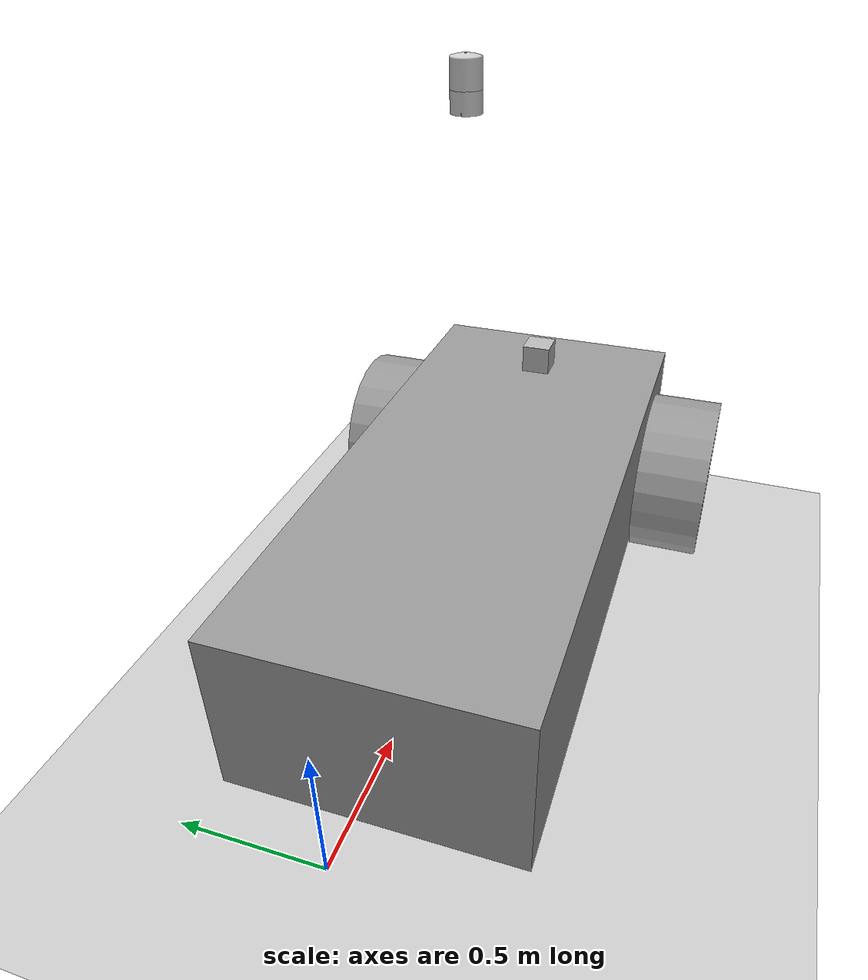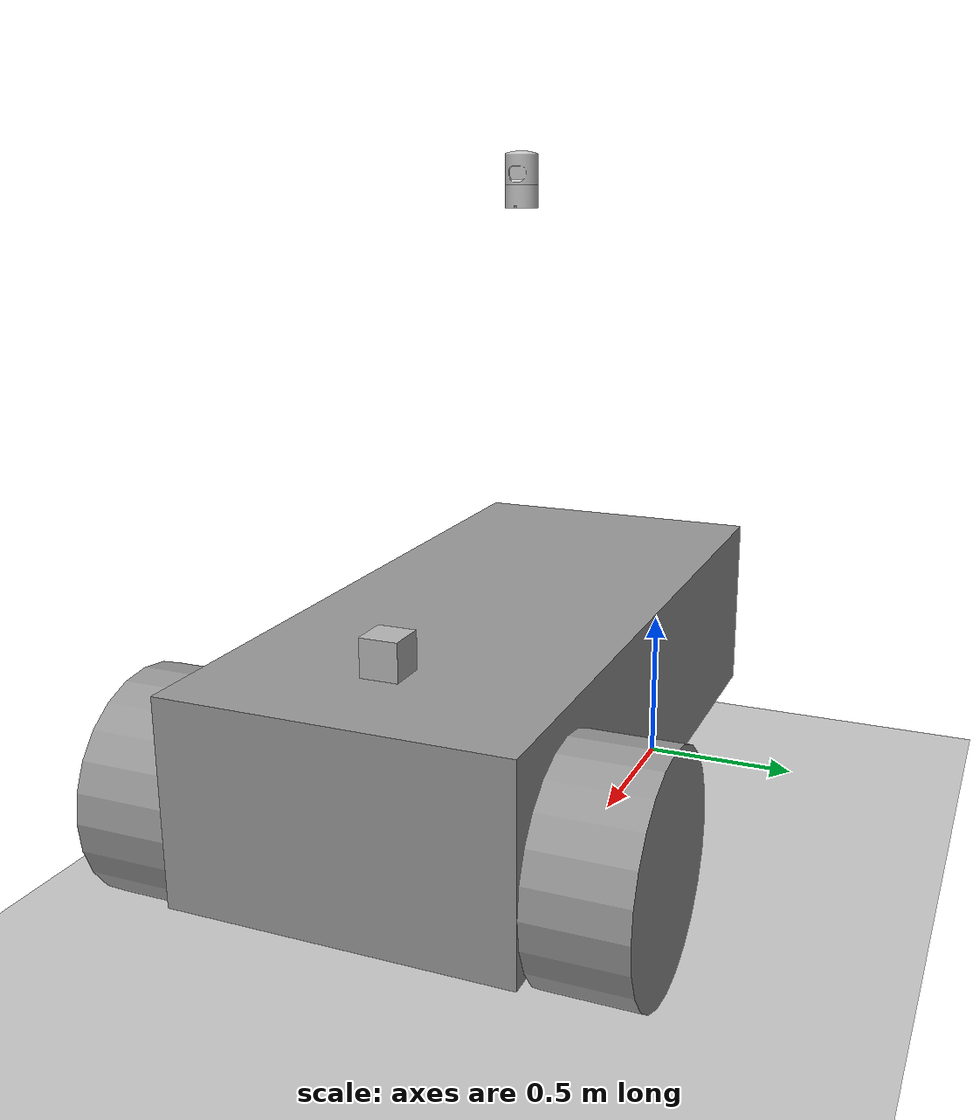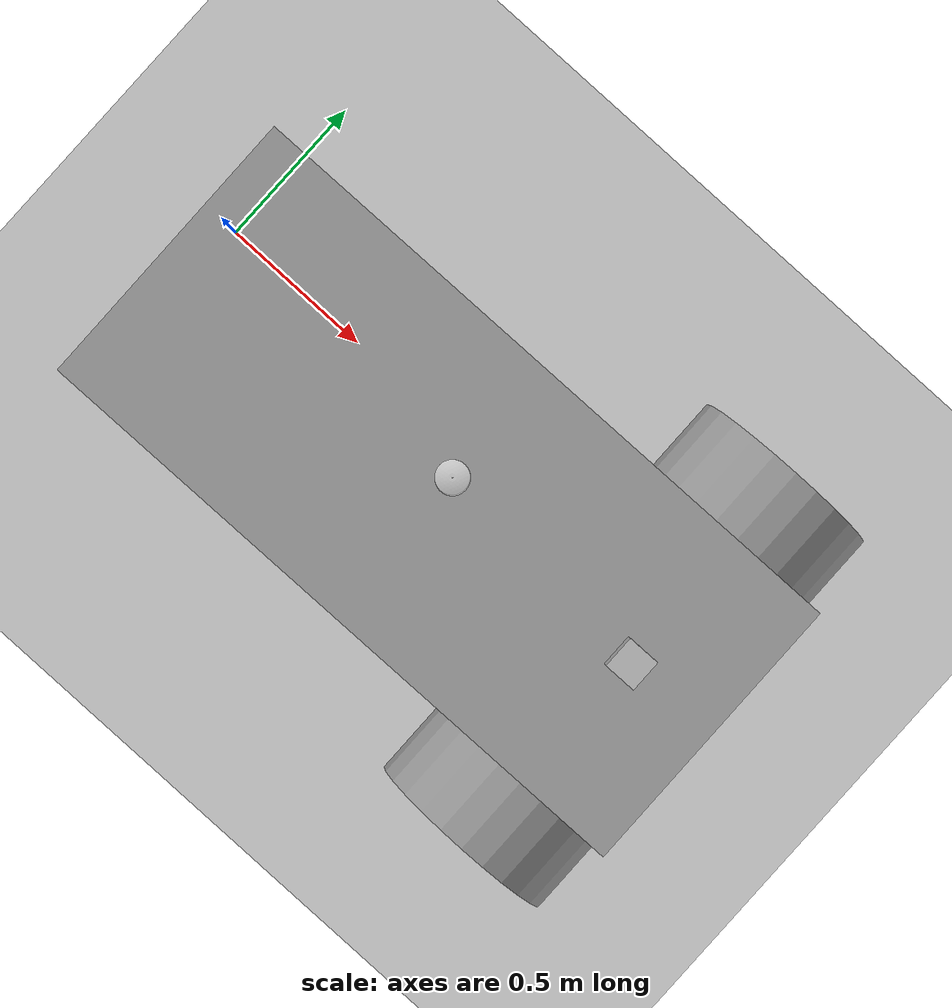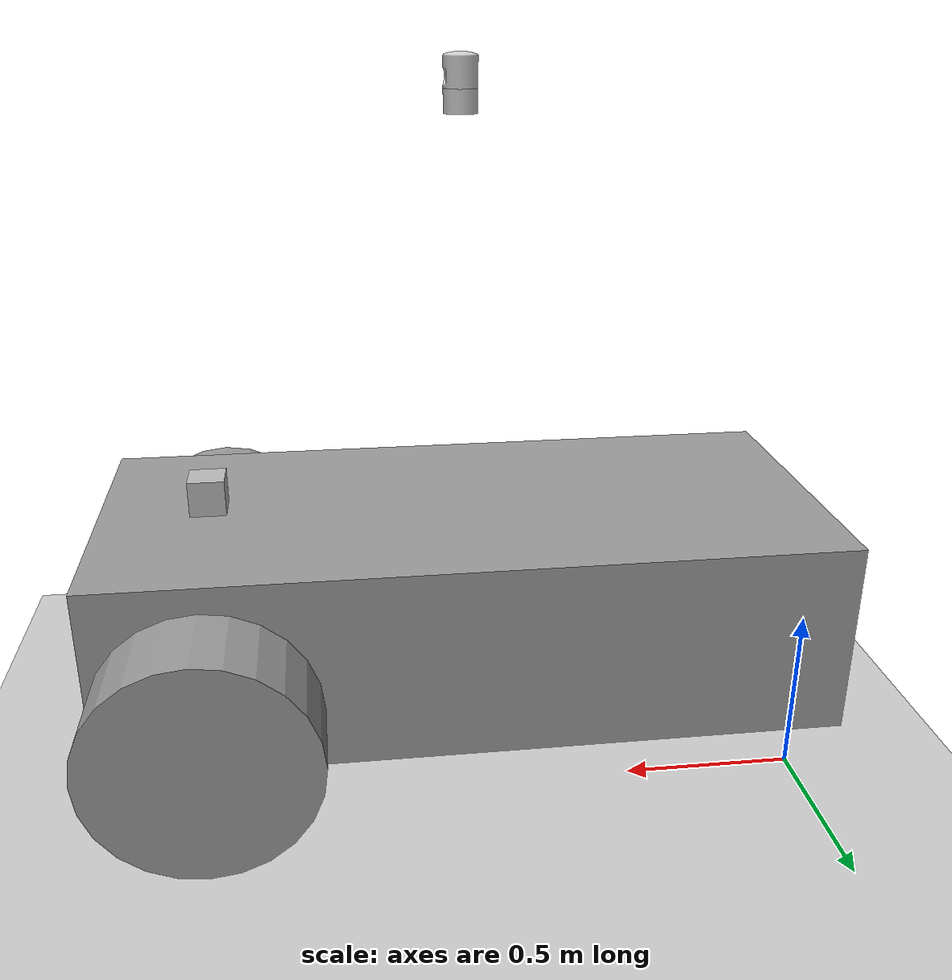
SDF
<sdf version="1.7">
 <world name="default">
  <light name="sun" type="directional">
   <pose>0 0 10 0 -0 0</pose>
   <diffuse>0.8 0.8 0.8 1</diffuse>
   <specular>0.2 0.2 0.2 1</specular>
   <attenuation>
    <range>1000</range>
    <constant>0.9</constant>
    <linear>0.01</linear>
    <quadratic>0.001</quadratic>
   </attenuation>
   <direction>-0.5 0.1 -0.9</direction>
   <spot><inner_angle>0</inner_angle><outer_angle>0</outer_angle><falloff>0</falloff></spot>
  </light>
  <model name="ground_plane">
   <static>1</static>
   <link name="link">
    <collision name="collision">
     <geometry><plane><normal>0 0 1</normal><size>100 100</size></plane></geometry>
     <surface><friction><ode><mu>100</mu><mu2>50</mu2></ode></friction></surface>
    </collision>
    <visual name="visual">
     <cast_shadows>0</cast_shadows>
     <geometry><plane><normal>0 0 1</normal><size>100 100</size></plane></geometry>
     <material>
      <script><uri>file://media/materials/scripts/gazebo.material</uri><name>Gazebo/Grey</name></script>
     </material>
    </visual>
   </link>
  </model>
  <gravity>0 0 -9.8</gravity>
  <magnetic_field>6e-06 2.3e-05 -4.2e-05</magnetic_field>
  <atmosphere type="adiabatic"/>
  <physics type="ode">
   <max_step_size>0.001</max_step_size>
   <real_time_factor>1</real_time_factor>
   <real_time_update_rate>1000</real_time_update_rate>
  </physics>
  <scene><ambient>0.4 0.4 0.4 1</ambient><background>0.7 0.7 0.7 1</background><shadows>1</shadows></scene>
  <spherical_coordinates>
   <surface_model>EARTH_WGS84</surface_model>
   <latitude_deg>0</latitude_deg>
   <longitude_deg>0</longitude_deg>
   <elevation>0</elevation>
   <heading_deg>0</heading_deg>
  </spherical_coordinates>
  <audio><device>default</device></audio>
  <model name="vehicle">
   <model name="my_vehicle">
    <link name="link_0">
     <inertial>
      <mass>0.978008</mass>
      <inertia>
       <ixx>0.122564</ixx>
       <ixy>0</ixy>
       <ixz>0</ixz>
       <iyy>0.407773</iyy>
       <iyz>0</iyz>
       <izz>0.472213</izz>
      </inertia>
     </inertial>
     <pose>0 0 0.4 0 -0 0</pose>
     <visual name="visual">
      <geometry><box><size>2.01366 0.897702 0.541504</size></box></geometry>
      <material>
       <lighting>1</lighting>
       <script><uri>file://media/materials/scripts/gazebo.material</uri><name>Gazebo/Grey</name></script>
       <shader type="pixel"><normal_map>__default__</normal_map></shader>
       <ambient>0.3 0.3 0.3 1</ambient>
       <diffuse>0.7 0.7 0.7 1</diffuse>
       <specular>0.01 0.01 0.01 1</specular>
       <emissive>0 0 0 1</emissive>
      </material>
     </visual>
     <collision name="collision">
      <geometry><box><size>2.01366 0.897702 0.541504</size></box></geometry>
      <surface>
       <friction>
        <ode><mu>1</mu><mu2>1</mu2><fdir1>0 0 0</fdir1><slip1>0</slip1><slip2>0</slip2></ode>
        <torsional>
         <coefficient>1</coefficient>
         <patch_radius>0</patch_radius>
         <surface_radius>0</surface_radius>
         <use_patch_radius>1</use_patch_radius>
         <ode><slip>0</slip></ode>
        </torsional>
       </friction>
       <bounce><restitution_coefficient>0</restitution_coefficient><threshold>1e+06</threshold></bounce>
       <contact>
        <collide_without_contact>0</collide_without_contact>
        <collide_without_contact_bitmask>1</collide_without_contact_bitmask>
        <collide_bitmask>1</collide_bitmask>
        <ode>
         <soft_cfm>0</soft_cfm>
         <soft_erp>0.2</soft_erp>
         <kp>1e+13</kp>
         <kd>1</kd>
         <max_vel>0.01</max_vel>
         <min_depth>0</min_depth>
        </ode>
        <bullet>
         <split_impulse>1</split_impulse>
         <split_impulse_penetration_threshold>-0.01</split_impulse_penetration_threshold>
         <soft_cfm>0</soft_cfm>
         <soft_erp>0.2</soft_erp>
         <kp>1e+13</kp>
         <kd>1</kd>
        </bullet>
       </contact>
      </surface>
     </collision>
    </link>
    <link name="link_1">
     <inertial>
      <mass>1</mass>
      <inertia><ixx>0.145833</ixx><ixy>0</ixy><ixz>0</ixz><iyy>0.145833</iyy><iyz>0</iyz><izz>0.125</izz></inertia>
     </inertial>
     <pose>0.70683 -0.573879 0.3 1.5707 -0 0</pose>
     <visual name="visual">
      <geometry><cylinder><radius>0.3</radius><length>0.25</length></cylinder></geometry>
      <material>
       <lighting>1</lighting>
       <script><uri>file://media/materials/scripts/gazebo.material</uri><name>Gazebo/Grey</name></script>
       <shader type="pixel"><normal_map>__default__</normal_map></shader>
       <ambient>0.3 0.3 0.3 1</ambient>
       <diffuse>0.7 0.7 0.7 1</diffuse>
       <specular>0.01 0.01 0.01 1</specular>
       <emissive>0 0 0 1</emissive>
      </material>
     </visual>
     <collision name="collision">
      <geometry><cylinder><radius>0.3</radius><length>0.25</length></cylinder></geometry>
      <surface>
       <friction>
        <ode><mu>1</mu><mu2>1</mu2><fdir1>0 0 0</fdir1><slip1>0</slip1><slip2>0</slip2></ode>
        <torsional>
         <coefficient>1</coefficient>
         <patch_radius>0</patch_radius>
         <surface_radius>0</surface_radius>
         <use_patch_radius>1</use_patch_radius>
         <ode><slip>0</slip></ode>
        </torsional>
       </friction>
       <bounce><restitution_coefficient>0</restitution_coefficient><threshold>1e+06</threshold></bounce>
       <contact>
        <collide_without_contact>0</collide_without_contact>
        <collide_without_contact_bitmask>1</collide_without_contact_bitmask>
        <collide_bitmask>1</collide_bitmask>
        <ode>
         <soft_cfm>0</soft_cfm>
         <soft_erp>0.2</soft_erp>
         <kp>1e+13</kp>
         <kd>1</kd>
         <max_vel>0.01</max_vel>
         <min_depth>0</min_depth>
        </ode>
        <bullet>
         <split_impulse>1</split_impulse>
         <split_impulse_penetration_threshold>-0.01</split_impulse_penetration_threshold>
         <soft_cfm>0</soft_cfm>
         <soft_erp>0.2</soft_erp>
         <kp>1e+13</kp>
         <kd>1</kd>
        </bullet>
       </contact>
      </surface>
     </collision>
    </link>
    <link name="link_1_clone">
     <inertial>
      <mass>1</mass>
      <inertia><ixx>0.145833</ixx><ixy>0</ixy><ixz>0</ixz><iyy>0.145833</iyy><iyz>0</iyz><izz>0.125</izz></inertia>
     </inertial>
     <pose>0.70683 0.573879 0.3 1.5707 -0 0</pose>
     <visual name="visual">
      <geometry><cylinder><radius>0.3</radius><length>0.25</length></cylinder></geometry>
      <material>
       <lighting>1</lighting>
       <script><uri>file://media/materials/scripts/gazebo.material</uri><name>Gazebo/Grey</name></script>
       <shader type="pixel"><normal_map>__default__</normal_map></shader>
       <ambient>0.3 0.3 0.3 1</ambient>
       <diffuse>0.7 0.7 0.7 1</diffuse>
       <specular>0.01 0.01 0.01 1</specular>
       <emissive>0 0 0 1</emissive>
      </material>
     </visual>
     <collision name="collision">
      <geometry><cylinder><radius>0.3</radius><length>0.25</length></cylinder></geometry>
      <surface>
       <friction>
        <ode><mu>1</mu><mu2>1</mu2><fdir1>0 0 0</fdir1><slip1>0</slip1><slip2>0</slip2></ode>
        <torsional>
         <coefficient>1</coefficient>
         <patch_radius>0</patch_radius>
         <surface_radius>0</surface_radius>
         <use_patch_radius>1</use_patch_radius>
         <ode><slip>0</slip></ode>
        </torsional>
       </friction>
       <bounce><restitution_coefficient>0</restitution_coefficient><threshold>1e+06</threshold></bounce>
       <contact>
        <collide_without_contact>0</collide_without_contact>
        <collide_without_contact_bitmask>1</collide_without_contact_bitmask>
        <collide_bitmask>1</collide_bitmask>
        <ode>
         <soft_cfm>0</soft_cfm>
         <soft_erp>0.2</soft_erp>
         <kp>1e+13</kp>
         <kd>1</kd>
         <max_vel>0.01</max_vel>
         <min_depth>0</min_depth>
        </ode>
        <bullet>
         <split_impulse>1</split_impulse>
         <split_impulse_penetration_threshold>-0.01</split_impulse_penetration_threshold>
         <soft_cfm>0</soft_cfm>
         <soft_erp>0.2</soft_erp>
         <kp>1e+13</kp>
         <kd>1</kd>
        </bullet>
       </contact>
      </surface>
     </collision>
    </link>
    <link name="link_2">
     <inertial>
      <mass>1</mass>
      <inertia><ixx>0.1</ixx><ixy>0</ixy><ixz>0</ixz><iyy>0.1</iyy><iyz>0</iyz><izz>0.1</izz></inertia>
     </inertial>
     <pose>-0.80683 -0 0.2 0 -0 0</pose>
     <visual name="visual">
      <geometry><sphere><radius>0.2</radius></sphere></geometry>
      <material>
       <lighting>1</lighting>
       <script><uri>file://media/materials/scripts/gazebo.material</uri><name>Gazebo/Grey</name></script>
       <shader type="pixel"><normal_map>__default__</normal_map></shader>
       <ambient>0.3 0.3 0.3 1</ambient>
       <diffuse>0.7 0.7 0.7 1</diffuse>
       <specular>0.01 0.01 0.01 1</specular>
       <emissive>0 0 0 1</emissive>
      </material>
     </visual>
     <collision name="collision">
      <geometry><sphere><radius>0.2</radius></sphere></geometry>
      <surface>
       <friction>
        <ode><mu>1</mu><mu2>1</mu2><fdir1>0 0 0</fdir1><slip1>0</slip1><slip2>0</slip2></ode>
        <torsional>
         <coefficient>1</coefficient>
         <patch_radius>0</patch_radius>
         <surface_radius>0</surface_radius>
         <use_patch_radius>1</use_patch_radius>
         <ode><slip>0</slip></ode>
        </torsional>
       </friction>
       <bounce><restitution_coefficient>0</restitution_coefficient><threshold>1e+06</threshold></bounce>
       <contact>
        <collide_without_contact>0</collide_without_contact>
        <collide_without_contact_bitmask>1</collide_without_contact_bitmask>
        <collide_bitmask>1</collide_bitmask>
        <ode>
         <soft_cfm>0</soft_cfm>
         <soft_erp>0.2</soft_erp>
         <kp>1e+13</kp>
         <kd>1</kd>
         <max_vel>0.01</max_vel>
         <min_depth>0</min_depth>
        </ode>
        <bullet>
         <split_impulse>1</split_impulse>
         <split_impulse_penetration_threshold>-0.01</split_impulse_penetration_threshold>
         <soft_cfm>0</soft_cfm>
         <soft_erp>0.2</soft_erp>
         <kp>1e+13</kp>
         <kd>1</kd>
        </bullet>
       </contact>
      </surface>
     </collision>
    </link>
    <model name="depth_camera">
     <link name="link">
      <pose>0 0 0.05 0 -0 0</pose>
      <inertial>
       <mass>0.1</mass>
       <inertia>
        <ixx>0.000166667</ixx>
        <iyy>0.000166667</iyy>
        <izz>0.000166667</izz>
        <ixy>0</ixy>
        <ixz>0</ixz>
        <iyz>0</iyz>
       </inertia>
      </inertial>
      <collision name="collision"><geometry><box><size>0.1 0.1 0.1</size></box></geometry></collision>
      <visual name="visual"><geometry><box><size>0.1 0.1 0.1</size></box></geometry></visual>
      <sensor name="camera" type="depth">
       <camera>
        <horizontal_fov>1.047</horizontal_fov>
        <image><width>320</width><height>240</height></image>
        <clip><near>0.1</near><far>100</far></clip>
       </camera>
       <always_on>1</always_on>
       <update_rate>30</update_rate>
       <visualize>1</visualize>
      </sensor>
     </link>
     <pose>0.703483 0.000736 0.682741 0 -0 0</pose>
    </model>
    <joint name="link_0_JOINT_0" type="revolute">
     <parent>link_0</parent>
     <child>link_1_clone</child>
     <axis>
      <xyz>0 0 1</xyz>
      <limit>
       <lower>-1.79769e+308</lower>
       <upper>1.79769e+308</upper>
       <effort>-1</effort>
       <velocity>-1</velocity>
      </limit>
      <dynamics>
       <spring_reference>0</spring_reference>
       <spring_stiffness>0</spring_stiffness>
       <damping>0</damping>
       <friction>0</friction>
      </dynamics>
     </axis>
     <physics>
      <ode><limit><cfm>0</cfm><erp>0.2</erp></limit><suspension><cfm>0</cfm><erp>0.2</erp></suspension></ode>
     </physics>
    </joint>
    <joint name="link_0_JOINT_1" type="revolute">
     <parent>link_0</parent>
     <child>link_1</child>
     <axis>
      <xyz>0 0 1</xyz>
      <limit>
       <lower>-1.79769e+308</lower>
       <upper>1.79769e+308</upper>
       <effort>-1</effort>
       <velocity>-1</velocity>
      </limit>
      <dynamics>
       <spring_reference>0</spring_reference>
       <spring_stiffness>0</spring_stiffness>
       <damping>0</damping>
       <friction>0</friction>
      </dynamics>
     </axis>
     <physics>
      <ode><limit><cfm>0</cfm><erp>0.2</erp></limit><suspension><cfm>0</cfm><erp>0.2</erp></suspension></ode>
     </physics>
    </joint>
    <joint name="link_0_JOINT_2" type="ball">
     <parent>link_0</parent>
     <child>link_2</child>
     <physics>
      <ode><limit><cfm>0</cfm><erp>0.2</erp></limit><suspension><cfm>0</cfm><erp>0.2</erp></suspension></ode>
     </physics>
    </joint>
    <joint name="link_0_JOINT_3" type="fixed">
     <parent>link_0</parent>
     <child>depth_camera::link</child>
     <physics>
      <ode><limit><cfm>0</cfm><erp>0.2</erp></limit><suspension><cfm>0</cfm><erp>0.2</erp></suspension></ode>
     </physics>
    </joint>
    <static>0</static>
    <plugin name="follower" filename="libFollowerPlugin.so"/>
    <pose>-0.00475 -0.028209 -0.86291 0 -0 0</pose>
   </model>
   <model name="velodyne_hdl-32">
    <link name="base">
     <pose>0 0 0.029335 0 -0 0</pose>
     <inertial>
      <mass>1.2</mass>
      <inertia>
       <ixx>0.00108747</ixx>
       <iyy>0.00108747</iyy>
       <izz>0.00109244</izz>
       <ixy>0</ixy>
       <ixz>0</ixz>
       <iyz>0</iyz>
      </inertia>
     </inertial>
     <visual name="base_visual">
      <pose>0 0 -0.029335 0 -0 0</pose>
      <geometry><mesh><uri>model://velodyne_hdl32/meshes/velodyne_base.dae</uri></mesh></geometry>
      <material><shader type="pixel"/></material>
     </visual>
     <collision name="base_collision">
      <geometry><cylinder><radius>0.04267</radius><length>0.05867</length></cylinder></geometry>
      <surface>
       <friction>
        <ode><mu>1</mu><mu2>1</mu2><fdir1>0 0 0</fdir1><slip1>0</slip1><slip2>0</slip2></ode>
        <torsional>
         <coefficient>1</coefficient>
         <patch_radius>0</patch_radius>
         <surface_radius>0</surface_radius>
         <use_patch_radius>1</use_patch_radius>
         <ode><slip>0</slip></ode>
        </torsional>
       </friction>
       <bounce><restitution_coefficient>0</restitution_coefficient><threshold>1e+06</threshold></bounce>
       <contact>
        <collide_without_contact>0</collide_without_contact>
        <collide_without_contact_bitmask>1</collide_without_contact_bitmask>
        <collide_bitmask>1</collide_bitmask>
        <ode>
         <soft_cfm>0</soft_cfm>
         <soft_erp>0.2</soft_erp>
         <kp>1e+13</kp>
         <kd>1</kd>
         <max_vel>0.01</max_vel>
         <min_depth>0</min_depth>
        </ode>
        <bullet>
         <split_impulse>1</split_impulse>
         <split_impulse_penetration_threshold>-0.01</split_impulse_penetration_threshold>
         <soft_cfm>0</soft_cfm>
         <soft_erp>0.2</soft_erp>
         <kp>1e+13</kp>
         <kd>1</kd>
        </bullet>
       </contact>
      </surface>
     </collision>
    </link>
    <link name="top">
     <pose>0 0 0.095455 0 -0 0</pose>
     <inertial>
      <mass>0.1</mass>
      <inertia>
       <ixx>9.062e-05</ixx>
       <iyy>9.062e-05</iyy>
       <izz>9.104e-05</izz>
       <ixy>0</ixy>
       <ixz>0</ixz>
       <iyz>0</iyz>
      </inertia>
     </inertial>
     <sensor name="sensor" type="ray">
      <pose>0 0 -0.004645 1.5707 -0 0</pose>
      <visualize>1</visualize>
      <update_rate>30</update_rate>
      <ray>
       <scan>
        <horizontal>
         <samples>32</samples>
         <resolution>1</resolution>
         <min_angle>-0.535292</min_angle>
         <max_angle>0.186227</max_angle>
        </horizontal>
        <vertical><samples>1</samples><min_angle>0</min_angle><max_angle>0</max_angle></vertical>
       </scan>
       <range><min>0.05</min><max>70</max><resolution>0.02</resolution></range>
      </ray>
     </sensor>
     <gravity>0</gravity>
     <visual name="top_visual">
      <pose>0 0 -0.037679 0 -0 1.5707</pose>
      <geometry><mesh><uri>model://velodyne_hdl32/meshes/velodyne_top.dae</uri></mesh></geometry>
      <material><shader type="pixel"><normal_map>__default__</normal_map></shader></material>
     </visual>
     <collision name="top_collision">
      <geometry><cylinder><radius>0.04267</radius><length>0.07357</length></cylinder></geometry>
      <surface>
       <friction>
        <ode><mu>1</mu><mu2>1</mu2><fdir1>0 0 0</fdir1><slip1>0</slip1><slip2>0</slip2></ode>
        <torsional>
         <coefficient>1</coefficient>
         <patch_radius>0</patch_radius>
         <surface_radius>0</surface_radius>
         <use_patch_radius>1</use_patch_radius>
         <ode><slip>0</slip></ode>
        </torsional>
       </friction>
       <bounce><restitution_coefficient>0</restitution_coefficient><threshold>1e+06</threshold></bounce>
       <contact>
        <collide_without_contact>0</collide_without_contact>
        <collide_without_contact_bitmask>1</collide_without_contact_bitmask>
        <collide_bitmask>1</collide_bitmask>
        <ode>
         <soft_cfm>0</soft_cfm>
         <soft_erp>0.2</soft_erp>
         <kp>1e+13</kp>
         <kd>1</kd>
         <max_vel>0.01</max_vel>
         <min_depth>0</min_depth>
        </ode>
        <bullet>
         <split_impulse>1</split_impulse>
         <split_impulse_penetration_threshold>-0.01</split_impulse_penetration_threshold>
         <soft_cfm>0</soft_cfm>
         <soft_erp>0.2</soft_erp>
         <kp>1e+13</kp>
         <kd>1</kd>
        </bullet>
       </contact>
      </surface>
     </collision>
    </link>
    <joint name="joint" type="revolute">
     <parent>base</parent>
     <child>top</child>
     <pose>0 0 -0.036785 0 -0 0</pose>
     <axis>
      <xyz>0 0 1</xyz>
      <limit><lower>-1e+16</lower><upper>1e+16</upper><effort>-1</effort><velocity>-1</velocity></limit>
      <dynamics>
       <spring_reference>0</spring_reference>
       <spring_stiffness>0</spring_stiffness>
       <damping>0</damping>
       <friction>0</friction>
      </dynamics>
     </axis>
     <physics>
      <ode><limit><cfm>0</cfm><erp>0.2</erp></limit><suspension><cfm>0</cfm><erp>0.2</erp></suspension></ode>
     </physics>
    </joint>
    <static>0</static>
    <plugin name="velodyne_plugin" filename="libvelodyne_plugin.so"><velocity>5</velocity></plugin>
    <pose>0.004751 0.028209 0.862911 0 -0 0</pose>
   </model>
   <joint name="link_0_JOINT_0" type="fixed">
    <parent>my_vehicle::link_0</parent>
    <child>velodyne_hdl-32::base</child>
    <physics>
     <ode><limit><cfm>0</cfm><erp>0.2</erp></limit><suspension><cfm>0</cfm><erp>0.2</erp></suspension></ode>
    </physics>
   </joint>
   <static>0</static>
   <pose>0.997819 -0.135779 1.05272 5e-06 -6e-06 0.005096</pose>
  </model>
  <joint type="revolute" name="joint">
   <pose>0 0 -0.036785 0 0 0</pose>
   <parent>base</parent>
   <child>top</child>
   <axis><xyz>0 0 1</xyz><limit><lower>-10000000000000000</lower><upper>10000000000000000</upper></limit></axis>
  </joint>
 </world>
</sdf>
